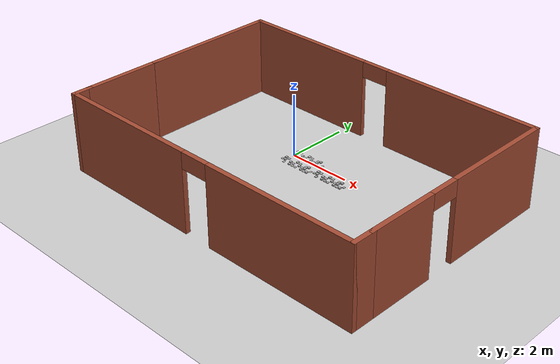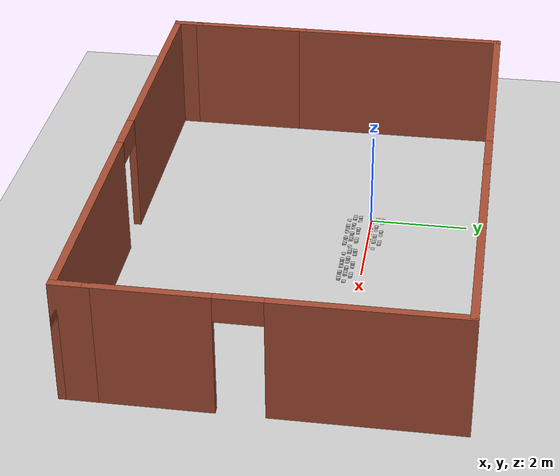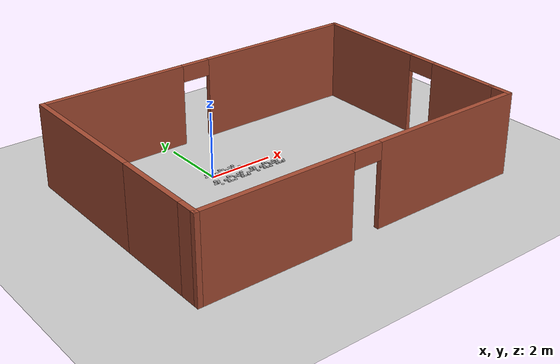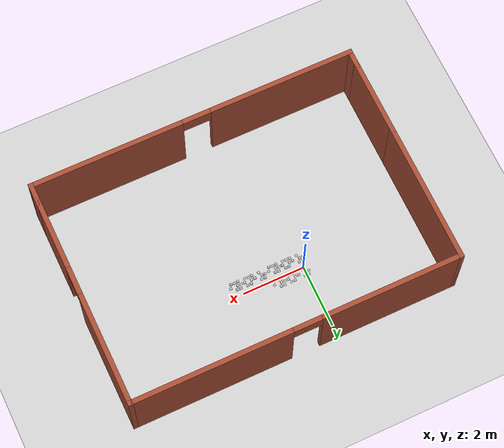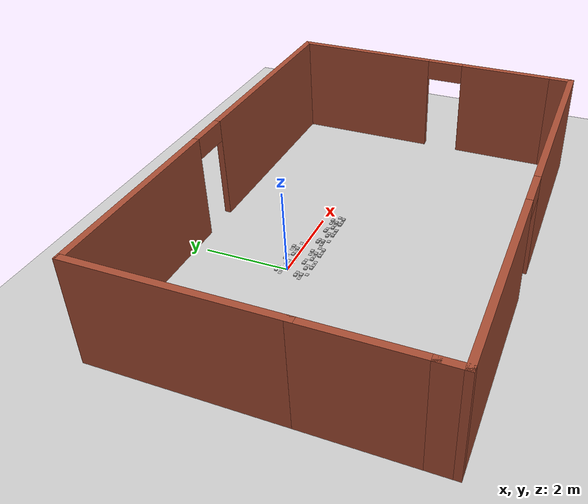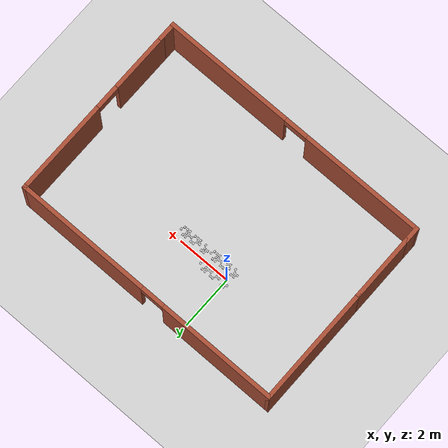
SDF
<sdf version="1.7">
 <world name="default">
  <model name="ground_plane">
   <static>1</static>
   <link name="link">
    <collision name="collision">
     <geometry><plane><normal>0 0 1</normal><size>100 100</size></plane></geometry>
     <surface>
      <contact><collide_bitmask>65535</collide_bitmask></contact>
      <friction><ode><mu>100</mu><mu2>50</mu2></ode></friction>
     </surface>
    </collision>
    <visual name="visual">
     <cast_shadows>0</cast_shadows>
     <geometry><plane><normal>0 0 1</normal><size>100 100</size></plane></geometry>
     <material>
      <script><uri>file://media/materials/scripts/gazebo.material</uri><name>Gazebo/Grey</name></script>
     </material>
    </visual>
   </link>
  </model>
  <model name="fourdiwari">
   <pose>1.375 -1.26 0 0 -0 0</pose>
   <link name="Wall_0">
    <collision name="Wall_0_Collision">
     <geometry><box><size>2.5 0.15 2.5</size></box></geometry>
     <pose>0 0 1.25 0 -0 0</pose>
    </collision>
    <visual name="Wall_0_Visual">
     <pose>0 0 1.25 0 -0 0</pose>
     <geometry><box><size>2.5 0.15 2.5</size></box></geometry>
     <material>
      <script><uri>file://media/materials/scripts/gazebo.material</uri><name>Gazebo/Bricks</name></script>
      <ambient>1 1 1 1</ambient>
     </material>
     <meta><layer>0</layer></meta>
    </visual>
    <pose>-5.175 -1.925 0 0 -0 1.5708</pose>
   </link>
   <link name="Wall_1">
    <collision name="Wall_1_Collision">
     <geometry><box><size>4.5 0.15 2.5</size></box></geometry>
     <pose>0 0 1.25 0 -0 0</pose>
    </collision>
    <visual name="Wall_1_Visual">
     <pose>0 0 1.25 0 -0 0</pose>
     <geometry><box><size>4.5 0.15 2.5</size></box></geometry>
     <material>
      <script><uri>file://media/materials/scripts/gazebo.material</uri><name>Gazebo/Bricks</name></script>
      <ambient>1 1 1 1</ambient>
     </material>
     <meta><layer>0</layer></meta>
    </visual>
    <pose>-5.175 1.425 0 0 -0 1.5708</pose>
   </link>
   <link name="Wall_2">
    <pose>-0 3.6 0 0 -0 0</pose>
    <visual name="Wall_2_Visual_0">
     <pose>-2.99721 0 1.25 0 -0 0</pose>
     <geometry><box><size>4.50558 0.15 2.5</size></box></geometry>
     <material>
      <script><uri>file://media/materials/scripts/gazebo.material</uri><name>Gazebo/Bricks</name></script>
      <ambient>1 1 1 1</ambient>
     </material>
     <meta><layer>0</layer></meta>
    </visual>
    <collision name="Wall_2_Collision_0">
     <geometry><box><size>4.50558 0.15 2.5</size></box></geometry>
     <pose>-2.99721 0 1.25 0 -0 0</pose>
    </collision>
    <visual name="Wall_2_Visual_1">
     <pose>2.70279 0 1.25 0 -0 0</pose>
     <geometry><box><size>5.09442 0.15 2.5</size></box></geometry>
     <material>
      <script><uri>file://media/materials/scripts/gazebo.material</uri><name>Gazebo/Bricks</name></script>
      <ambient>1 1 1 1</ambient>
     </material>
     <meta><layer>0</layer></meta>
    </visual>
    <collision name="Wall_2_Collision_1">
     <geometry><box><size>5.09442 0.15 2.5</size></box></geometry>
     <pose>2.70279 0 1.25 0 -0 0</pose>
    </collision>
    <visual name="Wall_2_Visual_2">
     <pose>-0.294422 0 2.25 0 -0 0</pose>
     <geometry><box><size>0.9 0.15 0.5</size></box></geometry>
     <material>
      <script><uri>file://media/materials/scripts/gazebo.material</uri><name>Gazebo/Bricks</name></script>
      <ambient>1 1 1 1</ambient>
     </material>
     <meta><layer>0</layer></meta>
    </visual>
    <collision name="Wall_2_Collision_2">
     <geometry><box><size>0.9 0.15 0.5</size></box></geometry>
     <pose>-0.294422 0 2.25 0 -0 0</pose>
    </collision>
   </link>
   <link name="Wall_3">
    <pose>5.175 0.3 0 0 -0 -1.5708</pose>
    <visual name="Wall_3_Visual_0">
     <pose>-1.5784 0 1.25 0 -0 0</pose>
     <geometry><box><size>3.59321 0.15 2.5</size></box></geometry>
     <material>
      <script><uri>file://media/materials/scripts/gazebo.material</uri><name>Gazebo/Bricks</name></script>
      <ambient>1 1 1 1</ambient>
     </material>
     <meta><layer>0</layer></meta>
    </visual>
    <collision name="Wall_3_Collision_0">
     <geometry><box><size>3.59321 0.15 2.5</size></box></geometry>
     <pose>-1.5784 0 1.25 0 -0 0</pose>
    </collision>
    <visual name="Wall_3_Visual_1">
     <pose>2.2466 0 1.25 0 -0 0</pose>
     <geometry><box><size>2.25679 0.15 2.5</size></box></geometry>
     <material>
      <script><uri>file://media/materials/scripts/gazebo.material</uri><name>Gazebo/Bricks</name></script>
      <ambient>1 1 1 1</ambient>
     </material>
     <meta><layer>0</layer></meta>
    </visual>
    <collision name="Wall_3_Collision_1">
     <geometry><box><size>2.25679 0.15 2.5</size></box></geometry>
     <pose>2.2466 0 1.25 0 -0 0</pose>
    </collision>
    <visual name="Wall_3_Visual_2">
     <pose>0.668205 0 2.25 0 -0 0</pose>
     <geometry><box><size>0.9 0.15 0.5</size></box></geometry>
     <material>
      <script><uri>file://media/materials/scripts/gazebo.material</uri><name>Gazebo/Bricks</name></script>
      <ambient>1 1 1 1</ambient>
     </material>
     <meta><layer>0</layer></meta>
    </visual>
    <collision name="Wall_3_Collision_2">
     <geometry><box><size>0.9 0.15 0.5</size></box></geometry>
     <pose>0.668205 0 2.25 0 -0 0</pose>
    </collision>
   </link>
   <link name="Wall_4">
    <collision name="Wall_4_Collision">
     <geometry><box><size>0.75 0.15 2.5</size></box></geometry>
     <pose>0 0 1.25 0 -0 0</pose>
    </collision>
    <visual name="Wall_4_Visual">
     <pose>0 0 1.25 0 -0 0</pose>
     <geometry><box><size>0.75 0.15 2.5</size></box></geometry>
     <material>
      <script><uri>file://media/materials/scripts/gazebo.material</uri><name>Gazebo/Bricks</name></script>
      <ambient>1 1 1 1</ambient>
     </material>
     <meta><layer>0</layer></meta>
    </visual>
    <pose>5.175 -3.3 0 0 -0 -1.5708</pose>
   </link>
   <link name="Wall_5">
    <pose>-0 -3.6 0 0 -0 3.14159</pose>
    <visual name="Wall_5_Visual_0">
     <pose>-2.79589 0 1.25 0 -0 0</pose>
     <geometry><box><size>4.90822 0.15 2.5</size></box></geometry>
     <material>
      <script><uri>file://media/materials/scripts/gazebo.material</uri><name>Gazebo/Bricks</name></script>
      <ambient>1 1 1 1</ambient>
     </material>
     <meta><layer>0</layer></meta>
    </visual>
    <collision name="Wall_5_Collision_0">
     <geometry><box><size>4.90822 0.15 2.5</size></box></geometry>
     <pose>-2.79589 0 1.25 0 -0 0</pose>
    </collision>
    <visual name="Wall_5_Visual_1">
     <pose>2.90411 0 1.25 0 -0 0</pose>
     <geometry><box><size>4.69178 0.15 2.5</size></box></geometry>
     <material>
      <script><uri>file://media/materials/scripts/gazebo.material</uri><name>Gazebo/Bricks</name></script>
      <ambient>1 1 1 1</ambient>
     </material>
     <meta><layer>0</layer></meta>
    </visual>
    <collision name="Wall_5_Collision_1">
     <geometry><box><size>4.69178 0.15 2.5</size></box></geometry>
     <pose>2.90411 0 1.25 0 -0 0</pose>
    </collision>
    <visual name="Wall_5_Visual_2">
     <pose>0.10822 0 2.25 0 -0 0</pose>
     <geometry><box><size>0.9 0.15 0.5</size></box></geometry>
     <material>
      <script><uri>file://media/materials/scripts/gazebo.material</uri><name>Gazebo/Bricks</name></script>
      <ambient>1 1 1 1</ambient>
     </material>
     <meta><layer>0</layer></meta>
    </visual>
    <collision name="Wall_5_Collision_2">
     <geometry><box><size>0.9 0.15 0.5</size></box></geometry>
     <pose>0.10822 0 2.25 0 -0 0</pose>
    </collision>
   </link>
   <link name="Wall_6">
    <collision name="Wall_6_Collision">
     <geometry><box><size>0.65 0.15 2.5</size></box></geometry>
     <pose>0 0 1.25 0 -0 0</pose>
    </collision>
    <visual name="Wall_6_Visual">
     <pose>0 0 1.25 0 -0 0</pose>
     <geometry><box><size>0.65 0.15 2.5</size></box></geometry>
     <material>
      <script><uri>file://media/materials/scripts/gazebo.material</uri><name>Gazebo/Bricks</name></script>
      <ambient>1 1 1 1</ambient>
     </material>
     <meta><layer>0</layer></meta>
    </visual>
    <pose>-5.175 -3.35 0 0 -0 1.5708</pose>
   </link>
   <static>1</static>
  </model>
  <model name="frc2016_roughterrain">
   <static>1</static>
   <link name="link">
    <visual name="platform">
     <pose>0 0 0.08269 0 -0 0</pose>
     <geometry><box><size>1.27 0.5969 0.003175</size></box></geometry>
    </visual>
    <collision name="platform">
     <pose>0 0 0.08269 0 -0 0</pose>
     <geometry><box><size>1.27 0.5969 0.003175</size></box></geometry>
    </collision>
    <visual name="row1_block1_sm">
     <pose>0.51435 0.1143 0.09698 0 -0 0</pose>
     <geometry><box><size>0.0762 0.0762 0.0254</size></box></geometry>
    </visual>
    <collision name="row1_block1_sm">
     <pose>0.51435 0.1143 0.09698 0 -0 0</pose>
     <geometry><box><size>0.0762 0.0762 0.0254</size></box></geometry>
    </collision>
    <visual name="row1_block2_lg">
     <pose>0.40005 0.1143 0.12238 0 -0 0</pose>
     <geometry><box><size>0.0762 0.0762 0.0762</size></box></geometry>
    </visual>
    <collision name="row1_block2_lg">
     <pose>0.40005 0.1143 0.12238 0 -0 0</pose>
     <geometry><box><size>0.0762 0.0762 0.0762</size></box></geometry>
    </collision>
    <visual name="row1_block3_md">
     <pose>0.28575 0.1143 0.10968 0 -0 0</pose>
     <geometry><box><size>0.0762 0.0762 0.0508</size></box></geometry>
    </visual>
    <collision name="row1_block3_md">
     <pose>0.28575 0.1143 0.10968 0 -0 0</pose>
     <geometry><box><size>0.0762 0.0762 0.0508</size></box></geometry>
    </collision>
    <visual name="row1_block4_sm">
     <pose>0.17145 0.1143 0.09698 0 -0 0</pose>
     <geometry><box><size>0.0762 0.0762 0.0254</size></box></geometry>
    </visual>
    <collision name="row1_block4_sm">
     <pose>0.17145 0.1143 0.09698 0 -0 0</pose>
     <geometry><box><size>0.0762 0.0762 0.0254</size></box></geometry>
    </collision>
    <visual name="row1_block5_md">
     <pose>0.05715 0.1143 0.10968 0 -0 0</pose>
     <geometry><box><size>0.0762 0.0762 0.0508</size></box></geometry>
    </visual>
    <collision name="row1_block5_md">
     <pose>0.05715 0.1143 0.10968 0 -0 0</pose>
     <geometry><box><size>0.0762 0.0762 0.0508</size></box></geometry>
    </collision>
    <visual name="row1_block6_lg">
     <pose>-0.05715 0.1143 0.12238 0 -0 0</pose>
     <geometry><box><size>0.0762 0.0762 0.0762</size></box></geometry>
    </visual>
    <collision name="row1_block6_lg">
     <pose>-0.05715 0.1143 0.12238 0 -0 0</pose>
     <geometry><box><size>0.0762 0.0762 0.0762</size></box></geometry>
    </collision>
    <visual name="row1_block7_sm">
     <pose>-0.17145 0.1143 0.09698 0 -0 0</pose>
     <geometry><box><size>0.0762 0.0762 0.0254</size></box></geometry>
    </visual>
    <collision name="row1_block7_sm">
     <pose>-0.17145 0.1143 0.09698 0 -0 0</pose>
     <geometry><box><size>0.0762 0.0762 0.0254</size></box></geometry>
    </collision>
    <visual name="row1_block8_sm">
     <pose>-0.28575 0.1143 0.09698 0 -0 0</pose>
     <geometry><box><size>0.0762 0.0762 0.0254</size></box></geometry>
    </visual>
    <collision name="row1_block8_sm">
     <pose>-0.28575 0.1143 0.09698 0 -0 0</pose>
     <geometry><box><size>0.0762 0.0762 0.0254</size></box></geometry>
    </collision>
    <visual name="row1_block9_md">
     <pose>-0.40005 0.1143 0.10968 0 -0 0</pose>
     <geometry><box><size>0.0762 0.0762 0.0508</size></box></geometry>
    </visual>
    <collision name="row1_block9_md">
     <pose>-0.40005 0.1143 0.10968 0 -0 0</pose>
     <geometry><box><size>0.0762 0.0762 0.0508</size></box></geometry>
    </collision>
    <visual name="row1_block10_lg">
     <pose>-0.51435 0.1143 0.12238 0 -0 0</pose>
     <geometry><box><size>0.0762 0.0762 0.0762</size></box></geometry>
    </visual>
    <collision name="row1_block10_lg">
     <pose>-0.51435 0.1143 0.12238 0 -0 0</pose>
     <geometry><box><size>0.0762 0.0762 0.0762</size></box></geometry>
    </collision>
    <visual name="row2_block1_md">
     <pose>0.5715 0 0.10968 0 -0 0</pose>
     <geometry><box><size>0.0762 0.0762 0.0508</size></box></geometry>
    </visual>
    <collision name="row2_block1_md">
     <pose>0.5715 0 0.10968 0 -0 0</pose>
     <geometry><box><size>0.0762 0.0762 0.0508</size></box></geometry>
    </collision>
    <visual name="row2_block2_sm">
     <pose>0.4572 0 0.09698 0 -0 0</pose>
     <geometry><box><size>0.0762 0.0762 0.0254</size></box></geometry>
    </visual>
    <collision name="row2_block2_sm">
     <pose>0.4572 0 0.09698 0 -0 0</pose>
     <geometry><box><size>0.0762 0.0762 0.0254</size></box></geometry>
    </collision>
    <visual name="row2_block3_lg">
     <pose>0.3429 0 0.12238 0 -0 0</pose>
     <geometry><box><size>0.0762 0.0762 0.0762</size></box></geometry>
    </visual>
    <collision name="row2_block3_lg">
     <pose>0.3429 0 0.12238 0 -0 0</pose>
     <geometry><box><size>0.0762 0.0762 0.0762</size></box></geometry>
    </collision>
    <visual name="row2_block4_md">
     <pose>0.2286 0 0.10968 0 -0 0</pose>
     <geometry><box><size>0.0762 0.0762 0.0508</size></box></geometry>
    </visual>
    <collision name="row2_block4_md">
     <pose>0.2286 0 0.10968 0 -0 0</pose>
     <geometry><box><size>0.0762 0.0762 0.0508</size></box></geometry>
    </collision>
    <visual name="row2_block5_lg">
     <pose>0.1143 0 0.12238 0 -0 0</pose>
     <geometry><box><size>0.0762 0.0762 0.0762</size></box></geometry>
    </visual>
    <collision name="row2_block5_lg">
     <pose>0.1143 0 0.12238 0 -0 0</pose>
     <geometry><box><size>0.0762 0.0762 0.0762</size></box></geometry>
    </collision>
    <visual name="row2_block6_sm">
     <pose>0 0 0.09698 0 -0 0</pose>
     <geometry><box><size>0.0762 0.0762 0.0254</size></box></geometry>
    </visual>
    <collision name="row2_block6_sm">
     <pose>0 0 0.09698 0 -0 0</pose>
     <geometry><box><size>0.0762 0.0762 0.0254</size></box></geometry>
    </collision>
    <visual name="row2_block7_md">
     <pose>-0.1143 0 0.10968 0 -0 0</pose>
     <geometry><box><size>0.0762 0.0762 0.0508</size></box></geometry>
    </visual>
    <collision name="row2_block7_md">
     <pose>-0.1143 0 0.10968 0 -0 0</pose>
     <geometry><box><size>0.0762 0.0762 0.0508</size></box></geometry>
    </collision>
    <visual name="row2_block8_lg">
     <pose>-0.2286 0 0.12238 0 -0 0</pose>
     <geometry><box><size>0.0762 0.0762 0.0762</size></box></geometry>
    </visual>
    <collision name="row2_block8_lg">
     <pose>-0.2286 0 0.12238 0 -0 0</pose>
     <geometry><box><size>0.0762 0.0762 0.0762</size></box></geometry>
    </collision>
    <visual name="row2_block9_sm">
     <pose>-0.3429 0 0.09698 0 -0 0</pose>
     <geometry><box><size>0.0762 0.0762 0.0254</size></box></geometry>
    </visual>
    <collision name="row2_block9_sm">
     <pose>-0.3429 0 0.09698 0 -0 0</pose>
     <geometry><box><size>0.0762 0.0762 0.0254</size></box></geometry>
    </collision>
    <visual name="row2_block10_lg">
     <pose>-0.4572 0 0.12238 0 -0 0</pose>
     <geometry><box><size>0.0762 0.0762 0.0762</size></box></geometry>
    </visual>
    <collision name="row2_block10_lg">
     <pose>-0.4572 0 0.12238 0 -0 0</pose>
     <geometry><box><size>0.0762 0.0762 0.0762</size></box></geometry>
    </collision>
    <visual name="row2_block11_md">
     <pose>-0.5715 0 0.10968 0 -0 0</pose>
     <geometry><box><size>0.0762 0.0762 0.0508</size></box></geometry>
    </visual>
    <collision name="row2_block11_md">
     <pose>-0.5715 0 0.10968 0 -0 0</pose>
     <geometry><box><size>0.0762 0.0762 0.0508</size></box></geometry>
    </collision>
    <visual name="row3_block1_lg">
     <pose>0.51435 -0.1143 0.12238 0 -0 0</pose>
     <geometry><box><size>0.0762 0.0762 0.0762</size></box></geometry>
    </visual>
    <collision name="row3_block1_lg">
     <pose>0.51435 -0.1143 0.12238 0 -0 0</pose>
     <geometry><box><size>0.0762 0.0762 0.0762</size></box></geometry>
    </collision>
    <visual name="row3_block2_md">
     <pose>0.40005 -0.1143 0.10968 0 -0 0</pose>
     <geometry><box><size>0.0762 0.0762 0.0508</size></box></geometry>
    </visual>
    <collision name="row3_block2_md">
     <pose>0.40005 -0.1143 0.10968 0 -0 0</pose>
     <geometry><box><size>0.0762 0.0762 0.0508</size></box></geometry>
    </collision>
    <visual name="row3_block3_lg">
     <pose>0.28575 -0.1143 0.12238 0 -0 0</pose>
     <geometry><box><size>0.0762 0.0762 0.0762</size></box></geometry>
    </visual>
    <collision name="row3_block3_lg">
     <pose>0.28575 -0.1143 0.12238 0 -0 0</pose>
     <geometry><box><size>0.0762 0.0762 0.0762</size></box></geometry>
    </collision>
    <visual name="row3_block4_sm">
     <pose>0.17145 -0.1143 0.09698 0 -0 0</pose>
     <geometry><box><size>0.0762 0.0762 0.0254</size></box></geometry>
    </visual>
    <collision name="row3_block4_sm">
     <pose>0.17145 -0.1143 0.09698 0 -0 0</pose>
     <geometry><box><size>0.0762 0.0762 0.0254</size></box></geometry>
    </collision>
    <visual name="row3_block5_md">
     <pose>0.05715 -0.1143 0.10968 0 -0 0</pose>
     <geometry><box><size>0.0762 0.0762 0.0508</size></box></geometry>
    </visual>
    <collision name="row3_block5_md">
     <pose>0.05715 -0.1143 0.10968 0 -0 0</pose>
     <geometry><box><size>0.0762 0.0762 0.0508</size></box></geometry>
    </collision>
    <visual name="row3_block6_md">
     <pose>-0.05715 -0.1143 0.10968 0 -0 0</pose>
     <geometry><box><size>0.0762 0.0762 0.0508</size></box></geometry>
    </visual>
    <collision name="row3_block6_md">
     <pose>-0.05715 -0.1143 0.10968 0 -0 0</pose>
     <geometry><box><size>0.0762 0.0762 0.0508</size></box></geometry>
    </collision>
    <visual name="row3_block7_lg">
     <pose>-0.17145 -0.1143 0.12238 0 -0 0</pose>
     <geometry><box><size>0.0762 0.0762 0.0762</size></box></geometry>
    </visual>
    <collision name="row3_block7_lg">
     <pose>-0.17145 -0.1143 0.12238 0 -0 0</pose>
     <geometry><box><size>0.0762 0.0762 0.0762</size></box></geometry>
    </collision>
    <visual name="row3_block8_sm">
     <pose>-0.28575 -0.1143 0.09698 0 -0 0</pose>
     <geometry><box><size>0.0762 0.0762 0.0254</size></box></geometry>
    </visual>
    <collision name="row3_block8_sm">
     <pose>-0.28575 -0.1143 0.09698 0 -0 0</pose>
     <geometry><box><size>0.0762 0.0762 0.0254</size></box></geometry>
    </collision>
    <visual name="row3_block9_md">
     <pose>-0.40005 -0.1143 0.10968 0 -0 0</pose>
     <geometry><box><size>0.0762 0.0762 0.0508</size></box></geometry>
    </visual>
    <collision name="row3_block9_md">
     <pose>-0.40005 -0.1143 0.10968 0 -0 0</pose>
     <geometry><box><size>0.0762 0.0762 0.0508</size></box></geometry>
    </collision>
    <visual name="row3_block10_sm">
     <pose>-0.51435 -0.1143 0.09698 0 -0 0</pose>
     <geometry><box><size>0.0762 0.0762 0.0254</size></box></geometry>
    </visual>
    <collision name="row3_block10_sm">
     <pose>-0.51435 -0.1143 0.09698 0 -0 0</pose>
     <geometry><box><size>0.0762 0.0762 0.0254</size></box></geometry>
    </collision>
   </link>
   <pose>0.450208 0.127615 -0.147899 0 -0 0</pose>
  </model>
  <model name="frc2016_roughterrain_0">
   <static>1</static>
   <link name="link">
    <visual name="platform">
     <pose>0 0 0.08269 0 -0 0</pose>
     <geometry><box><size>1.27 0.5969 0.003175</size></box></geometry>
    </visual>
    <collision name="platform">
     <pose>0 0 0.08269 0 -0 0</pose>
     <geometry><box><size>1.27 0.5969 0.003175</size></box></geometry>
    </collision>
    <visual name="row1_block1_sm">
     <pose>0.51435 0.1143 0.09698 0 -0 0</pose>
     <geometry><box><size>0.0762 0.0762 0.0254</size></box></geometry>
    </visual>
    <collision name="row1_block1_sm">
     <pose>0.51435 0.1143 0.09698 0 -0 0</pose>
     <geometry><box><size>0.0762 0.0762 0.0254</size></box></geometry>
    </collision>
    <visual name="row1_block2_lg">
     <pose>0.40005 0.1143 0.12238 0 -0 0</pose>
     <geometry><box><size>0.0762 0.0762 0.0762</size></box></geometry>
    </visual>
    <collision name="row1_block2_lg">
     <pose>0.40005 0.1143 0.12238 0 -0 0</pose>
     <geometry><box><size>0.0762 0.0762 0.0762</size></box></geometry>
    </collision>
    <visual name="row1_block3_md">
     <pose>0.28575 0.1143 0.10968 0 -0 0</pose>
     <geometry><box><size>0.0762 0.0762 0.0508</size></box></geometry>
    </visual>
    <collision name="row1_block3_md">
     <pose>0.28575 0.1143 0.10968 0 -0 0</pose>
     <geometry><box><size>0.0762 0.0762 0.0508</size></box></geometry>
    </collision>
    <visual name="row1_block4_sm">
     <pose>0.17145 0.1143 0.09698 0 -0 0</pose>
     <geometry><box><size>0.0762 0.0762 0.0254</size></box></geometry>
    </visual>
    <collision name="row1_block4_sm">
     <pose>0.17145 0.1143 0.09698 0 -0 0</pose>
     <geometry><box><size>0.0762 0.0762 0.0254</size></box></geometry>
    </collision>
    <visual name="row1_block5_md">
     <pose>0.05715 0.1143 0.10968 0 -0 0</pose>
     <geometry><box><size>0.0762 0.0762 0.0508</size></box></geometry>
    </visual>
    <collision name="row1_block5_md">
     <pose>0.05715 0.1143 0.10968 0 -0 0</pose>
     <geometry><box><size>0.0762 0.0762 0.0508</size></box></geometry>
    </collision>
    <visual name="row1_block6_lg">
     <pose>-0.05715 0.1143 0.12238 0 -0 0</pose>
     <geometry><box><size>0.0762 0.0762 0.0762</size></box></geometry>
    </visual>
    <collision name="row1_block6_lg">
     <pose>-0.05715 0.1143 0.12238 0 -0 0</pose>
     <geometry><box><size>0.0762 0.0762 0.0762</size></box></geometry>
    </collision>
    <visual name="row1_block7_sm">
     <pose>-0.17145 0.1143 0.09698 0 -0 0</pose>
     <geometry><box><size>0.0762 0.0762 0.0254</size></box></geometry>
    </visual>
    <collision name="row1_block7_sm">
     <pose>-0.17145 0.1143 0.09698 0 -0 0</pose>
     <geometry><box><size>0.0762 0.0762 0.0254</size></box></geometry>
    </collision>
    <visual name="row1_block8_sm">
     <pose>-0.28575 0.1143 0.09698 0 -0 0</pose>
     <geometry><box><size>0.0762 0.0762 0.0254</size></box></geometry>
    </visual>
    <collision name="row1_block8_sm">
     <pose>-0.28575 0.1143 0.09698 0 -0 0</pose>
     <geometry><box><size>0.0762 0.0762 0.0254</size></box></geometry>
    </collision>
    <visual name="row1_block9_md">
     <pose>-0.40005 0.1143 0.10968 0 -0 0</pose>
     <geometry><box><size>0.0762 0.0762 0.0508</size></box></geometry>
    </visual>
    <collision name="row1_block9_md">
     <pose>-0.40005 0.1143 0.10968 0 -0 0</pose>
     <geometry><box><size>0.0762 0.0762 0.0508</size></box></geometry>
    </collision>
    <visual name="row1_block10_lg">
     <pose>-0.51435 0.1143 0.12238 0 -0 0</pose>
     <geometry><box><size>0.0762 0.0762 0.0762</size></box></geometry>
    </visual>
    <collision name="row1_block10_lg">
     <pose>-0.51435 0.1143 0.12238 0 -0 0</pose>
     <geometry><box><size>0.0762 0.0762 0.0762</size></box></geometry>
    </collision>
    <visual name="row2_block1_md">
     <pose>0.5715 0 0.10968 0 -0 0</pose>
     <geometry><box><size>0.0762 0.0762 0.0508</size></box></geometry>
    </visual>
    <collision name="row2_block1_md">
     <pose>0.5715 0 0.10968 0 -0 0</pose>
     <geometry><box><size>0.0762 0.0762 0.0508</size></box></geometry>
    </collision>
    <visual name="row2_block2_sm">
     <pose>0.4572 0 0.09698 0 -0 0</pose>
     <geometry><box><size>0.0762 0.0762 0.0254</size></box></geometry>
    </visual>
    <collision name="row2_block2_sm">
     <pose>0.4572 0 0.09698 0 -0 0</pose>
     <geometry><box><size>0.0762 0.0762 0.0254</size></box></geometry>
    </collision>
    <visual name="row2_block3_lg">
     <pose>0.3429 0 0.12238 0 -0 0</pose>
     <geometry><box><size>0.0762 0.0762 0.0762</size></box></geometry>
    </visual>
    <collision name="row2_block3_lg">
     <pose>0.3429 0 0.12238 0 -0 0</pose>
     <geometry><box><size>0.0762 0.0762 0.0762</size></box></geometry>
    </collision>
    <visual name="row2_block4_md">
     <pose>0.2286 0 0.10968 0 -0 0</pose>
     <geometry><box><size>0.0762 0.0762 0.0508</size></box></geometry>
    </visual>
    <collision name="row2_block4_md">
     <pose>0.2286 0 0.10968 0 -0 0</pose>
     <geometry><box><size>0.0762 0.0762 0.0508</size></box></geometry>
    </collision>
    <visual name="row2_block5_lg">
     <pose>0.1143 0 0.12238 0 -0 0</pose>
     <geometry><box><size>0.0762 0.0762 0.0762</size></box></geometry>
    </visual>
    <collision name="row2_block5_lg">
     <pose>0.1143 0 0.12238 0 -0 0</pose>
     <geometry><box><size>0.0762 0.0762 0.0762</size></box></geometry>
    </collision>
    <visual name="row2_block6_sm">
     <pose>0 0 0.09698 0 -0 0</pose>
     <geometry><box><size>0.0762 0.0762 0.0254</size></box></geometry>
    </visual>
    <collision name="row2_block6_sm">
     <pose>0 0 0.09698 0 -0 0</pose>
     <geometry><box><size>0.0762 0.0762 0.0254</size></box></geometry>
    </collision>
    <visual name="row2_block7_md">
     <pose>-0.1143 0 0.10968 0 -0 0</pose>
     <geometry><box><size>0.0762 0.0762 0.0508</size></box></geometry>
    </visual>
    <collision name="row2_block7_md">
     <pose>-0.1143 0 0.10968 0 -0 0</pose>
     <geometry><box><size>0.0762 0.0762 0.0508</size></box></geometry>
    </collision>
    <visual name="row2_block8_lg">
     <pose>-0.2286 0 0.12238 0 -0 0</pose>
     <geometry><box><size>0.0762 0.0762 0.0762</size></box></geometry>
    </visual>
    <collision name="row2_block8_lg">
     <pose>-0.2286 0 0.12238 0 -0 0</pose>
     <geometry><box><size>0.0762 0.0762 0.0762</size></box></geometry>
    </collision>
    <visual name="row2_block9_sm">
     <pose>-0.3429 0 0.09698 0 -0 0</pose>
     <geometry><box><size>0.0762 0.0762 0.0254</size></box></geometry>
    </visual>
    <collision name="row2_block9_sm">
     <pose>-0.3429 0 0.09698 0 -0 0</pose>
     <geometry><box><size>0.0762 0.0762 0.0254</size></box></geometry>
    </collision>
    <visual name="row2_block10_lg">
     <pose>-0.4572 0 0.12238 0 -0 0</pose>
     <geometry><box><size>0.0762 0.0762 0.0762</size></box></geometry>
    </visual>
    <collision name="row2_block10_lg">
     <pose>-0.4572 0 0.12238 0 -0 0</pose>
     <geometry><box><size>0.0762 0.0762 0.0762</size></box></geometry>
    </collision>
    <visual name="row2_block11_md">
     <pose>-0.5715 0 0.10968 0 -0 0</pose>
     <geometry><box><size>0.0762 0.0762 0.0508</size></box></geometry>
    </visual>
    <collision name="row2_block11_md">
     <pose>-0.5715 0 0.10968 0 -0 0</pose>
     <geometry><box><size>0.0762 0.0762 0.0508</size></box></geometry>
    </collision>
    <visual name="row3_block1_lg">
     <pose>0.51435 -0.1143 0.12238 0 -0 0</pose>
     <geometry><box><size>0.0762 0.0762 0.0762</size></box></geometry>
    </visual>
    <collision name="row3_block1_lg">
     <pose>0.51435 -0.1143 0.12238 0 -0 0</pose>
     <geometry><box><size>0.0762 0.0762 0.0762</size></box></geometry>
    </collision>
    <visual name="row3_block2_md">
     <pose>0.40005 -0.1143 0.10968 0 -0 0</pose>
     <geometry><box><size>0.0762 0.0762 0.0508</size></box></geometry>
    </visual>
    <collision name="row3_block2_md">
     <pose>0.40005 -0.1143 0.10968 0 -0 0</pose>
     <geometry><box><size>0.0762 0.0762 0.0508</size></box></geometry>
    </collision>
    <visual name="row3_block3_lg">
     <pose>0.28575 -0.1143 0.12238 0 -0 0</pose>
     <geometry><box><size>0.0762 0.0762 0.0762</size></box></geometry>
    </visual>
    <collision name="row3_block3_lg">
     <pose>0.28575 -0.1143 0.12238 0 -0 0</pose>
     <geometry><box><size>0.0762 0.0762 0.0762</size></box></geometry>
    </collision>
    <visual name="row3_block4_sm">
     <pose>0.17145 -0.1143 0.09698 0 -0 0</pose>
     <geometry><box><size>0.0762 0.0762 0.0254</size></box></geometry>
    </visual>
    <collision name="row3_block4_sm">
     <pose>0.17145 -0.1143 0.09698 0 -0 0</pose>
     <geometry><box><size>0.0762 0.0762 0.0254</size></box></geometry>
    </collision>
    <visual name="row3_block5_md">
     <pose>0.05715 -0.1143 0.10968 0 -0 0</pose>
     <geometry><box><size>0.0762 0.0762 0.0508</size></box></geometry>
    </visual>
    <collision name="row3_block5_md">
     <pose>0.05715 -0.1143 0.10968 0 -0 0</pose>
     <geometry><box><size>0.0762 0.0762 0.0508</size></box></geometry>
    </collision>
    <visual name="row3_block6_md">
     <pose>-0.05715 -0.1143 0.10968 0 -0 0</pose>
     <geometry><box><size>0.0762 0.0762 0.0508</size></box></geometry>
    </visual>
    <collision name="row3_block6_md">
     <pose>-0.05715 -0.1143 0.10968 0 -0 0</pose>
     <geometry><box><size>0.0762 0.0762 0.0508</size></box></geometry>
    </collision>
    <visual name="row3_block7_lg">
     <pose>-0.17145 -0.1143 0.12238 0 -0 0</pose>
     <geometry><box><size>0.0762 0.0762 0.0762</size></box></geometry>
    </visual>
    <collision name="row3_block7_lg">
     <pose>-0.17145 -0.1143 0.12238 0 -0 0</pose>
     <geometry><box><size>0.0762 0.0762 0.0762</size></box></geometry>
    </collision>
    <visual name="row3_block8_sm">
     <pose>-0.28575 -0.1143 0.09698 0 -0 0</pose>
     <geometry><box><size>0.0762 0.0762 0.0254</size></box></geometry>
    </visual>
    <collision name="row3_block8_sm">
     <pose>-0.28575 -0.1143 0.09698 0 -0 0</pose>
     <geometry><box><size>0.0762 0.0762 0.0254</size></box></geometry>
    </collision>
    <visual name="row3_block9_md">
     <pose>-0.40005 -0.1143 0.10968 0 -0 0</pose>
     <geometry><box><size>0.0762 0.0762 0.0508</size></box></geometry>
    </visual>
    <collision name="row3_block9_md">
     <pose>-0.40005 -0.1143 0.10968 0 -0 0</pose>
     <geometry><box><size>0.0762 0.0762 0.0508</size></box></geometry>
    </collision>
    <visual name="row3_block10_sm">
     <pose>-0.51435 -0.1143 0.09698 0 -0 0</pose>
     <geometry><box><size>0.0762 0.0762 0.0254</size></box></geometry>
    </visual>
    <collision name="row3_block10_sm">
     <pose>-0.51435 -0.1143 0.09698 0 -0 0</pose>
     <geometry><box><size>0.0762 0.0762 0.0254</size></box></geometry>
    </collision>
   </link>
   <pose>0.419055 -0.349774 -0.141216 0 -0 0</pose>
  </model>
  <model name="frc2016_roughterrain_2">
   <static>1</static>
   <link name="link">
    <visual name="platform">
     <pose>0 0 0.08269 0 -0 0</pose>
     <geometry><box><size>1.27 0.5969 0.003175</size></box></geometry>
    </visual>
    <collision name="platform">
     <pose>0 0 0.08269 0 -0 0</pose>
     <geometry><box><size>1.27 0.5969 0.003175</size></box></geometry>
    </collision>
    <visual name="row1_block1_sm">
     <pose>0.51435 0.1143 0.09698 0 -0 0</pose>
     <geometry><box><size>0.0762 0.0762 0.0254</size></box></geometry>
    </visual>
    <collision name="row1_block1_sm">
     <pose>0.51435 0.1143 0.09698 0 -0 0</pose>
     <geometry><box><size>0.0762 0.0762 0.0254</size></box></geometry>
    </collision>
    <visual name="row1_block2_lg">
     <pose>0.40005 0.1143 0.12238 0 -0 0</pose>
     <geometry><box><size>0.0762 0.0762 0.0762</size></box></geometry>
    </visual>
    <collision name="row1_block2_lg">
     <pose>0.40005 0.1143 0.12238 0 -0 0</pose>
     <geometry><box><size>0.0762 0.0762 0.0762</size></box></geometry>
    </collision>
    <visual name="row1_block3_md">
     <pose>0.28575 0.1143 0.10968 0 -0 0</pose>
     <geometry><box><size>0.0762 0.0762 0.0508</size></box></geometry>
    </visual>
    <collision name="row1_block3_md">
     <pose>0.28575 0.1143 0.10968 0 -0 0</pose>
     <geometry><box><size>0.0762 0.0762 0.0508</size></box></geometry>
    </collision>
    <visual name="row1_block4_sm">
     <pose>0.17145 0.1143 0.09698 0 -0 0</pose>
     <geometry><box><size>0.0762 0.0762 0.0254</size></box></geometry>
    </visual>
    <collision name="row1_block4_sm">
     <pose>0.17145 0.1143 0.09698 0 -0 0</pose>
     <geometry><box><size>0.0762 0.0762 0.0254</size></box></geometry>
    </collision>
    <visual name="row1_block5_md">
     <pose>0.05715 0.1143 0.10968 0 -0 0</pose>
     <geometry><box><size>0.0762 0.0762 0.0508</size></box></geometry>
    </visual>
    <collision name="row1_block5_md">
     <pose>0.05715 0.1143 0.10968 0 -0 0</pose>
     <geometry><box><size>0.0762 0.0762 0.0508</size></box></geometry>
    </collision>
    <visual name="row1_block6_lg">
     <pose>-0.05715 0.1143 0.12238 0 -0 0</pose>
     <geometry><box><size>0.0762 0.0762 0.0762</size></box></geometry>
    </visual>
    <collision name="row1_block6_lg">
     <pose>-0.05715 0.1143 0.12238 0 -0 0</pose>
     <geometry><box><size>0.0762 0.0762 0.0762</size></box></geometry>
    </collision>
    <visual name="row1_block7_sm">
     <pose>-0.17145 0.1143 0.09698 0 -0 0</pose>
     <geometry><box><size>0.0762 0.0762 0.0254</size></box></geometry>
    </visual>
    <collision name="row1_block7_sm">
     <pose>-0.17145 0.1143 0.09698 0 -0 0</pose>
     <geometry><box><size>0.0762 0.0762 0.0254</size></box></geometry>
    </collision>
    <visual name="row1_block8_sm">
     <pose>-0.28575 0.1143 0.09698 0 -0 0</pose>
     <geometry><box><size>0.0762 0.0762 0.0254</size></box></geometry>
    </visual>
    <collision name="row1_block8_sm">
     <pose>-0.28575 0.1143 0.09698 0 -0 0</pose>
     <geometry><box><size>0.0762 0.0762 0.0254</size></box></geometry>
    </collision>
    <visual name="row1_block9_md">
     <pose>-0.40005 0.1143 0.10968 0 -0 0</pose>
     <geometry><box><size>0.0762 0.0762 0.0508</size></box></geometry>
    </visual>
    <collision name="row1_block9_md">
     <pose>-0.40005 0.1143 0.10968 0 -0 0</pose>
     <geometry><box><size>0.0762 0.0762 0.0508</size></box></geometry>
    </collision>
    <visual name="row1_block10_lg">
     <pose>-0.51435 0.1143 0.12238 0 -0 0</pose>
     <geometry><box><size>0.0762 0.0762 0.0762</size></box></geometry>
    </visual>
    <collision name="row1_block10_lg">
     <pose>-0.51435 0.1143 0.12238 0 -0 0</pose>
     <geometry><box><size>0.0762 0.0762 0.0762</size></box></geometry>
    </collision>
    <visual name="row2_block1_md">
     <pose>0.5715 0 0.10968 0 -0 0</pose>
     <geometry><box><size>0.0762 0.0762 0.0508</size></box></geometry>
    </visual>
    <collision name="row2_block1_md">
     <pose>0.5715 0 0.10968 0 -0 0</pose>
     <geometry><box><size>0.0762 0.0762 0.0508</size></box></geometry>
    </collision>
    <visual name="row2_block2_sm">
     <pose>0.4572 0 0.09698 0 -0 0</pose>
     <geometry><box><size>0.0762 0.0762 0.0254</size></box></geometry>
    </visual>
    <collision name="row2_block2_sm">
     <pose>0.4572 0 0.09698 0 -0 0</pose>
     <geometry><box><size>0.0762 0.0762 0.0254</size></box></geometry>
    </collision>
    <visual name="row2_block3_lg">
     <pose>0.3429 0 0.12238 0 -0 0</pose>
     <geometry><box><size>0.0762 0.0762 0.0762</size></box></geometry>
    </visual>
    <collision name="row2_block3_lg">
     <pose>0.3429 0 0.12238 0 -0 0</pose>
     <geometry><box><size>0.0762 0.0762 0.0762</size></box></geometry>
    </collision>
    <visual name="row2_block4_md">
     <pose>0.2286 0 0.10968 0 -0 0</pose>
     <geometry><box><size>0.0762 0.0762 0.0508</size></box></geometry>
    </visual>
    <collision name="row2_block4_md">
     <pose>0.2286 0 0.10968 0 -0 0</pose>
     <geometry><box><size>0.0762 0.0762 0.0508</size></box></geometry>
    </collision>
    <visual name="row2_block5_lg">
     <pose>0.1143 0 0.12238 0 -0 0</pose>
     <geometry><box><size>0.0762 0.0762 0.0762</size></box></geometry>
    </visual>
    <collision name="row2_block5_lg">
     <pose>0.1143 0 0.12238 0 -0 0</pose>
     <geometry><box><size>0.0762 0.0762 0.0762</size></box></geometry>
    </collision>
    <visual name="row2_block6_sm">
     <pose>0 0 0.09698 0 -0 0</pose>
     <geometry><box><size>0.0762 0.0762 0.0254</size></box></geometry>
    </visual>
    <collision name="row2_block6_sm">
     <pose>0 0 0.09698 0 -0 0</pose>
     <geometry><box><size>0.0762 0.0762 0.0254</size></box></geometry>
    </collision>
    <visual name="row2_block7_md">
     <pose>-0.1143 0 0.10968 0 -0 0</pose>
     <geometry><box><size>0.0762 0.0762 0.0508</size></box></geometry>
    </visual>
    <collision name="row2_block7_md">
     <pose>-0.1143 0 0.10968 0 -0 0</pose>
     <geometry><box><size>0.0762 0.0762 0.0508</size></box></geometry>
    </collision>
    <visual name="row2_block8_lg">
     <pose>-0.2286 0 0.12238 0 -0 0</pose>
     <geometry><box><size>0.0762 0.0762 0.0762</size></box></geometry>
    </visual>
    <collision name="row2_block8_lg">
     <pose>-0.2286 0 0.12238 0 -0 0</pose>
     <geometry><box><size>0.0762 0.0762 0.0762</size></box></geometry>
    </collision>
    <visual name="row2_block9_sm">
     <pose>-0.3429 0 0.09698 0 -0 0</pose>
     <geometry><box><size>0.0762 0.0762 0.0254</size></box></geometry>
    </visual>
    <collision name="row2_block9_sm">
     <pose>-0.3429 0 0.09698 0 -0 0</pose>
     <geometry><box><size>0.0762 0.0762 0.0254</size></box></geometry>
    </collision>
    <visual name="row2_block10_lg">
     <pose>-0.4572 0 0.12238 0 -0 0</pose>
     <geometry><box><size>0.0762 0.0762 0.0762</size></box></geometry>
    </visual>
    <collision name="row2_block10_lg">
     <pose>-0.4572 0 0.12238 0 -0 0</pose>
     <geometry><box><size>0.0762 0.0762 0.0762</size></box></geometry>
    </collision>
    <visual name="row2_block11_md">
     <pose>-0.5715 0 0.10968 0 -0 0</pose>
     <geometry><box><size>0.0762 0.0762 0.0508</size></box></geometry>
    </visual>
    <collision name="row2_block11_md">
     <pose>-0.5715 0 0.10968 0 -0 0</pose>
     <geometry><box><size>0.0762 0.0762 0.0508</size></box></geometry>
    </collision>
    <visual name="row3_block1_lg">
     <pose>0.51435 -0.1143 0.12238 0 -0 0</pose>
     <geometry><box><size>0.0762 0.0762 0.0762</size></box></geometry>
    </visual>
    <collision name="row3_block1_lg">
     <pose>0.51435 -0.1143 0.12238 0 -0 0</pose>
     <geometry><box><size>0.0762 0.0762 0.0762</size></box></geometry>
    </collision>
    <visual name="row3_block2_md">
     <pose>0.40005 -0.1143 0.10968 0 -0 0</pose>
     <geometry><box><size>0.0762 0.0762 0.0508</size></box></geometry>
    </visual>
    <collision name="row3_block2_md">
     <pose>0.40005 -0.1143 0.10968 0 -0 0</pose>
     <geometry><box><size>0.0762 0.0762 0.0508</size></box></geometry>
    </collision>
    <visual name="row3_block3_lg">
     <pose>0.28575 -0.1143 0.12238 0 -0 0</pose>
     <geometry><box><size>0.0762 0.0762 0.0762</size></box></geometry>
    </visual>
    <collision name="row3_block3_lg">
     <pose>0.28575 -0.1143 0.12238 0 -0 0</pose>
     <geometry><box><size>0.0762 0.0762 0.0762</size></box></geometry>
    </collision>
    <visual name="row3_block4_sm">
     <pose>0.17145 -0.1143 0.09698 0 -0 0</pose>
     <geometry><box><size>0.0762 0.0762 0.0254</size></box></geometry>
    </visual>
    <collision name="row3_block4_sm">
     <pose>0.17145 -0.1143 0.09698 0 -0 0</pose>
     <geometry><box><size>0.0762 0.0762 0.0254</size></box></geometry>
    </collision>
    <visual name="row3_block5_md">
     <pose>0.05715 -0.1143 0.10968 0 -0 0</pose>
     <geometry><box><size>0.0762 0.0762 0.0508</size></box></geometry>
    </visual>
    <collision name="row3_block5_md">
     <pose>0.05715 -0.1143 0.10968 0 -0 0</pose>
     <geometry><box><size>0.0762 0.0762 0.0508</size></box></geometry>
    </collision>
    <visual name="row3_block6_md">
     <pose>-0.05715 -0.1143 0.10968 0 -0 0</pose>
     <geometry><box><size>0.0762 0.0762 0.0508</size></box></geometry>
    </visual>
    <collision name="row3_block6_md">
     <pose>-0.05715 -0.1143 0.10968 0 -0 0</pose>
     <geometry><box><size>0.0762 0.0762 0.0508</size></box></geometry>
    </collision>
    <visual name="row3_block7_lg">
     <pose>-0.17145 -0.1143 0.12238 0 -0 0</pose>
     <geometry><box><size>0.0762 0.0762 0.0762</size></box></geometry>
    </visual>
    <collision name="row3_block7_lg">
     <pose>-0.17145 -0.1143 0.12238 0 -0 0</pose>
     <geometry><box><size>0.0762 0.0762 0.0762</size></box></geometry>
    </collision>
    <visual name="row3_block8_sm">
     <pose>-0.28575 -0.1143 0.09698 0 -0 0</pose>
     <geometry><box><size>0.0762 0.0762 0.0254</size></box></geometry>
    </visual>
    <collision name="row3_block8_sm">
     <pose>-0.28575 -0.1143 0.09698 0 -0 0</pose>
     <geometry><box><size>0.0762 0.0762 0.0254</size></box></geometry>
    </collision>
    <visual name="row3_block9_md">
     <pose>-0.40005 -0.1143 0.10968 0 -0 0</pose>
     <geometry><box><size>0.0762 0.0762 0.0508</size></box></geometry>
    </visual>
    <collision name="row3_block9_md">
     <pose>-0.40005 -0.1143 0.10968 0 -0 0</pose>
     <geometry><box><size>0.0762 0.0762 0.0508</size></box></geometry>
    </collision>
    <visual name="row3_block10_sm">
     <pose>-0.51435 -0.1143 0.09698 0 -0 0</pose>
     <geometry><box><size>0.0762 0.0762 0.0254</size></box></geometry>
    </visual>
    <collision name="row3_block10_sm">
     <pose>-0.51435 -0.1143 0.09698 0 -0 0</pose>
     <geometry><box><size>0.0762 0.0762 0.0254</size></box></geometry>
    </collision>
   </link>
   <pose>1.69084 -0.324979 -0.133145 0 -0 0</pose>
  </model>
 </world>
</sdf>
